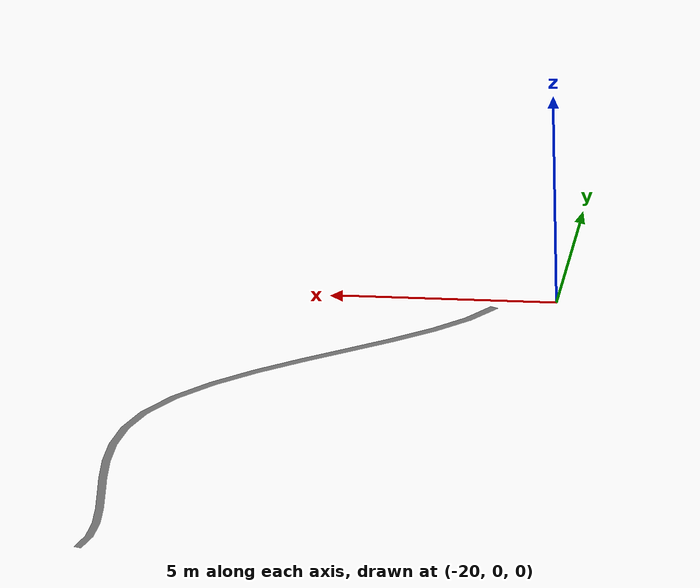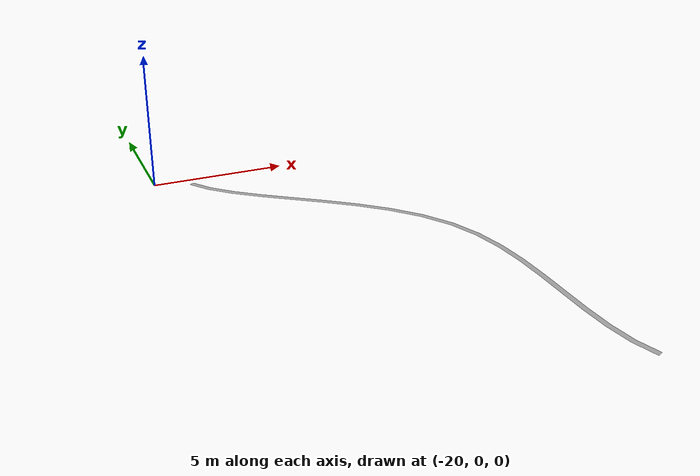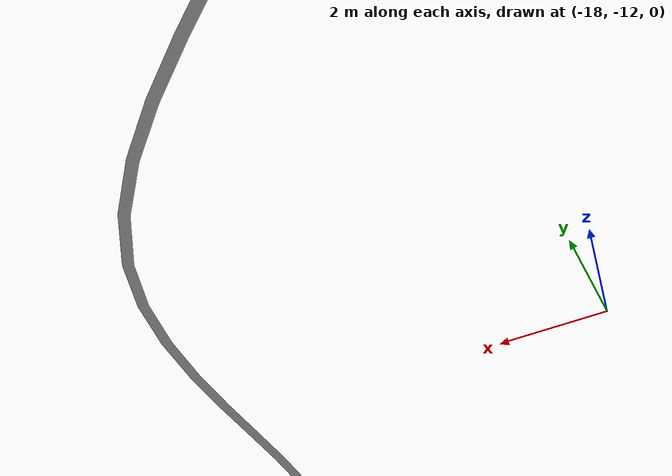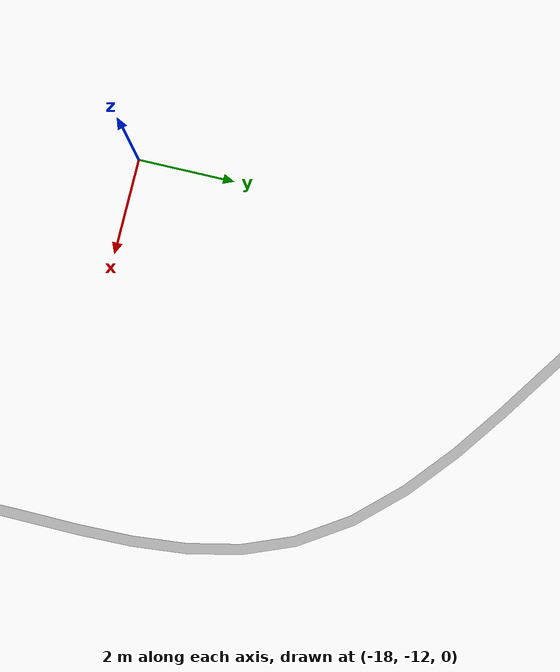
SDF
<?xml version="1.0"?>
<sdf version="1.5">
    <model name="road2_3">
        <static>true</static>
        <link name="link">
            <collision name="collision">
                <pose>0 0 0 0 0 0</pose>
                <geometry>
                    <mesh>
                        <uri>model://road2_3/meshes/road2_3.dae</uri>
                    </mesh>
                </geometry>
            </collision>
            <visual name="visual">
              <pose>0 0 0 0 0 0</pose>
              <geometry>
              <mesh>
                 <uri>model://road2_3/meshes/road2_3.dae</uri>
              </mesh>
              </geometry>
             </visual>
        </link>
    </model>
</sdf>
